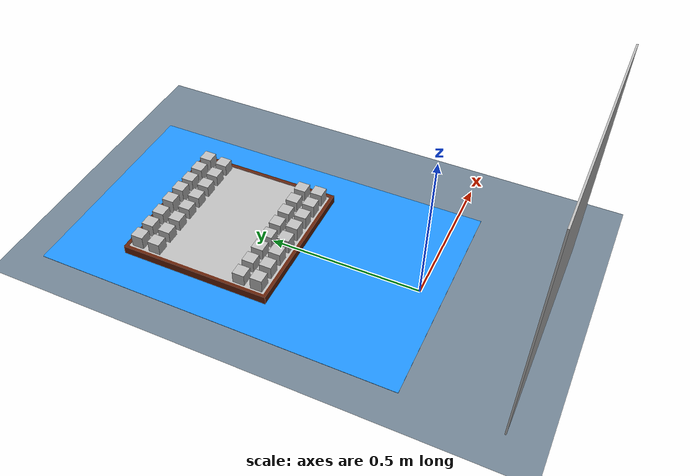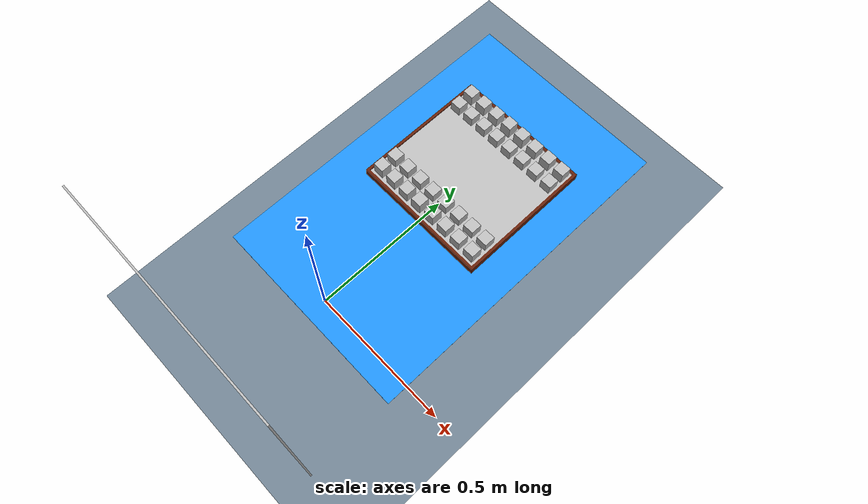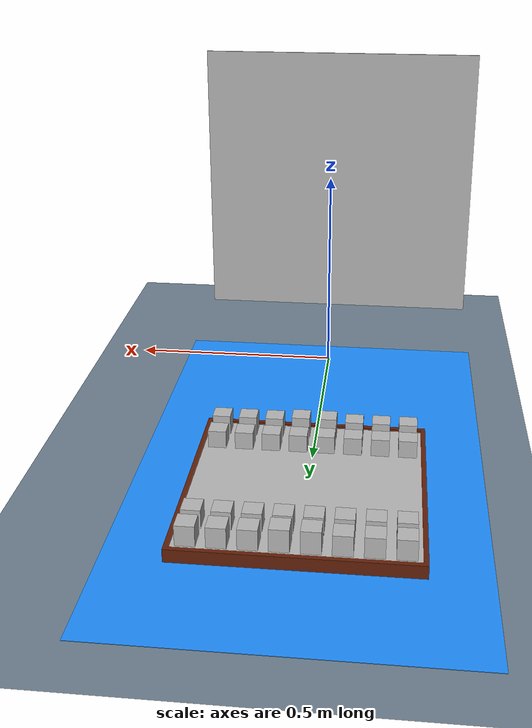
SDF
<?xml version='1.0'?>
<sdf version='1.6'>
  <world name='default'>
    <plugin name="ros_link_attacher_plugin" filename="libgazebo_ros_link_attacher.so"/>

    <light name='sun' type='directional'>
      <cast_shadows>1</cast_shadows>
      <pose frame=''>0 0 10 0 -0 0</pose>
      <diffuse>0.8 0.8 0.8 1</diffuse>
      <specular>0.2 0.2 0.2 1</specular>
      <attenuation>
        <range>1000</range>
        <constant>0.9</constant>
        <linear>0.01</linear>
        <quadratic>0.001</quadratic>
      </attenuation>
      <direction>-0.5 0.1 -0.9</direction>
    </light>

    <model name='ground_plane'>
      <static>1</static>
      <link name='link'>
        <collision name='collision'>
          <geometry>
            <plane>
              <normal>0 0 1</normal>
              <size>100 100</size>
            </plane>
          </geometry>
          <surface>
            <contact>
              <collide_bitmask>65535</collide_bitmask>
              <ode/>
            </contact>
            <friction>
              <ode>
                <mu>100</mu>
                <mu2>50</mu2>
              </ode>
              <torsional>
                <ode/>
              </torsional>
            </friction>
            <bounce/>
          </surface>
          <max_contacts>10</max_contacts>
        </collision>
        <visual name='visual'>
          <cast_shadows>0</cast_shadows>
          <geometry>
            <plane>
              <normal>0 0 1</normal>
              <size>5 5</size>
            </plane>
          </geometry>
          <material>
            <lighting>1</lighting>
            <shader type='vertex'>
              <normal_map>__default__</normal_map>
            </shader>
            <ambient>0.43 0.5 0.56 1</ambient>
            <diffuse>0.43 0.5 0.56 1</diffuse>
            <specular>0.01 0.01 0.01 1</specular>
            <emissive>0 0 0 1</emissive>
          </material>
        </visual>
        <self_collide>0</self_collide>
        <enable_wind>0</enable_wind>
        <kinematic>0</kinematic>
      </link>
    </model>

    <gravity>0 0 -9.8</gravity>
    <magnetic_field>6e-06 2.3e-05 -4.2e-05</magnetic_field>
    <atmosphere type='adiabatic'/>
    <physics name='default_physics' default='0' type='ode'>
      <max_step_size>0.001</max_step_size>
      <real_time_factor>1</real_time_factor>
      <real_time_update_rate>1000</real_time_update_rate>
    </physics>
    <scene>
      <ambient>0.4 0.4 0.4 1</ambient>
      <background>0.7 0.7 0.7 1</background>
      <shadows>1</shadows>
    </scene>
    <audio>
      <device>default</device>
    </audio>
    <wind/>
    <spherical_coordinates>
      <surface_model>EARTH_WGS84</surface_model>
      <latitude_deg>0</latitude_deg>
      <longitude_deg>0</longitude_deg>
      <elevation>0</elevation>
      <heading_deg>0</heading_deg>
    </spherical_coordinates>

    <!-- The table top of the robot -->
    <model name='table'>
      <link name='link'>
        <inertial>
          <mass>1</mass>
          <inertia>
            <ixx>0.166667</ixx>
            <ixy>0</ixy>
            <ixz>0</ixz>
            <iyy>0.166667</iyy>
            <iyz>0</iyz>
            <izz>0.166667</izz>
          </inertia>
          <pose frame=''>0 0 0 0 -0 0</pose>
        </inertial>
        <pose frame=''>0 0 0 0 -0 0</pose>
        <gravity>1</gravity>
        <self_collide>0</self_collide>
        <kinematic>0</kinematic>
        <enable_wind>0</enable_wind>
        <visual name='visual'>
          <pose frame=''>0 0 0 0 -0 0</pose>
          <geometry>
            <box>
              <size>0.75 1.20 0.001</size>
            </box>
          </geometry>
          <material>
            <lighting>1</lighting>
            <shader type='vertex'>
              <normal_map>__default__</normal_map>
            </shader>
            <ambient>0.12 0.56 1 1</ambient>
            <diffuse>0.12 0.56 1 1</diffuse>
            <specular>0.01 0.01 0.01 1</specular>
            <emissive>0 0 0 1</emissive>
          </material>
          <transparency>0</transparency>
          <cast_shadows>1</cast_shadows>
        </visual>
        <collision name='collision'>
          <pose frame=''>0 0 0 0 -0 0</pose>
          <geometry>
            <box>
              <size>0.75 1.20 0.001</size>
            </box>
          </geometry>
        </collision>
      </link>
      <static>1</static>
      <allow_auto_disable>1</allow_auto_disable>
      <pose frame=''>0 0.525 0.0005 0 -0 0</pose>
    </model>

     <!-- Chess Board -->
    <model name="kaspy">
      <pose>0 -0.375 0.375  -1.57 0 0</pose>
      <static>true</static>
      <link name='link'>
        <visual name="visual">
          <geometry>
            <mesh><uri>file:///home/parallels/major_project/src/assignment_1/models/chess_board/meshes/gkasp.dae</uri>
            <scale>0.5 0.5 0.5 </scale>
            </mesh>
          </geometry>
        </visual>
      </link>
    </model>

    <!-- Chess Board -->
    <model name="chess_board">
      <pose>0 0.65 0  0 0 0</pose>
      <static>true</static>
      <link name='link'>
        <visual name="visual">
          <geometry>
            <mesh><uri>file:///home/parallels/major_project/src/assignment_1/models/chess_board/meshes/chess_board.dae</uri>
            </mesh>
          </geometry>
        </visual>
      </link>
    </model>

    <!-- Black Pieces -->
    <model name="rook_black_1">
      <pose>0.21 0.44 0.045  0 0 0</pose>
      <static>1</static>
      <link name='link'>
        <inertial>
          <mass>2</mass>
          <inertia>
            <ixx>0.166667</ixx>
            <ixy>0</ixy>
            <ixz>0</ixz>
            <iyy>0.166667</iyy>
            <iyz>0</iyz>
            <izz>0.166667</izz>
          </inertia>
        </inertial>
        <gravity>1</gravity>
        <visual name="visual">
          <geometry>
            <mesh><uri>file:///home/parallels/major_project/src/assignment_1/models/chess_board/meshes/rook_black.dae</uri>
            <scale>0.5 0.5 0.5 </scale>
            </mesh>
          </geometry>
        </visual>
      </link>
    </model>

    <model name="knight_black_1">
      <pose>0.15 0.44 0.045  0 0 0</pose>
      <static>true</static>
      <link name='link'>
        <visual name="visual">
          <geometry>
            <mesh><uri>file:///home/parallels/major_project/src/assignment_1/models/chess_board/meshes/knight_black.dae</uri>
            <scale>0.5 0.5 0.5 </scale>
            </mesh>
          </geometry>
        </visual>
      </link>
    </model>

    <model name="bishop_black_1">
      <pose>0.09 0.44 0.045  0 0 0</pose>
      <static>true</static>
      <link name='link'>
        <visual name="visual">
          <geometry>
            <mesh><uri>file:///home/parallels/major_project/src/assignment_1/models/chess_board/meshes/bishop_black.dae</uri>
            <scale>0.5 0.5 0.5 </scale>
            </mesh>
          </geometry>
        </visual>
      </link>
    </model>
    <model name="queen_black">
      <pose>0.03 0.44 0.045  0 0 0</pose>
      <static>true</static>
      <link name='link'>
        <visual name="visual">
          <geometry>
            <mesh><uri>file:///home/parallels/major_project/src/assignment_1/models/chess_board/meshes/queen_black.dae</uri>
            <scale>0.5 0.5 0.5 </scale>
            </mesh>
          </geometry>
        </visual>
      </link>
    </model>
    <model name="king_black">
      <pose>-0.03 0.44 0.045  0 0 0</pose>
      <static>true</static>
      <link name='link'>
        <visual name="visual">
          <geometry>
            <mesh><uri>file:///home/parallels/major_project/src/assignment_1/models/chess_board/meshes/king_black.dae</uri>
            <scale>0.5 0.5 0.5 </scale>
            </mesh>
          </geometry>
        </visual>
      </link>
    </model>
    <model name="bishop_black_2">
      <pose>-0.09 0.44 0.045  0 0 0</pose>
      <static>true</static>
      <link name='link'>
        <visual name="visual">
          <geometry>
            <mesh><uri>file:///home/parallels/major_project/src/assignment_1/models/chess_board/meshes/bishop_black.dae</uri>
            <scale>0.5 0.5 0.5 </scale>
            </mesh>
          </geometry>
        </visual>
      </link>
    </model>
    <model name="knight_black_2">
      <pose>-0.15 0.44 0.045  0 0 0</pose>
      <static>true</static>
      <link name='link'>
        <visual name="visual">
          <geometry>
            <mesh><uri>file:///home/parallels/major_project/src/assignment_1/models/chess_board/meshes/knight_black.dae</uri>
            <scale>0.5 0.5 0.5 </scale>
            </mesh>
          </geometry>
        </visual>
      </link>
    </model>
    <model name="rook_black_2">
      <pose>-0.21 0.44 0.045  0 0 0</pose>
      <static>true</static>
      <link name='link'>
        <visual name="visual">
          <geometry>
            <mesh><uri>file:///home/parallels/major_project/src/assignment_1/models/chess_board/meshes/rook_black.dae</uri>
            <scale>0.5 0.5 0.5 </scale>
            </mesh>
          </geometry>
        </visual>
      </link>
    </model>

     <model name="pawn_black_1">
      <pose>0.21 0.5 0.045  0 0 0</pose>
      <static>true</static>
      <link name='link'>
        <visual name="visual">
          <geometry>
            <mesh><uri>file:///home/parallels/major_project/src/assignment_1/models/chess_board/meshes/pawn_black.dae</uri>
            <scale>0.5 0.5 0.5 </scale>
            </mesh>
          </geometry>
        </visual>
      </link>
    </model>
    <model name="pawn_black_2">
      <pose>0.15 0.5 0.045  0 0 0</pose>
      <static>true</static>
      <link name='link'>
        <visual name="visual">
          <geometry>
            <mesh><uri>file:///home/parallels/major_project/src/assignment_1/models/chess_board/meshes/pawn_black.dae</uri>
            <scale>0.5 0.5 0.5 </scale>
            </mesh>
          </geometry>
        </visual>
      </link>
    </model>
    <model name="pawn_black_3">
      <pose>0.09 0.5 0.045  0 0 0</pose>
      <static>true</static>
      <link name='link'>
        <visual name="visual">
          <geometry>
            <mesh><uri>file:///home/parallels/major_project/src/assignment_1/models/chess_board/meshes/pawn_black.dae</uri>
            <scale>0.5 0.5 0.5 </scale>
            </mesh>
          </geometry>
        </visual>
      </link>
    </model>
    <model name="pawn_black_4">
      <pose>0.03 0.5 0.045  0 0 0</pose>
      <static>true</static>
      <link name='link'>
        <visual name="visual">
          <geometry>
            <mesh><uri>file:///home/parallels/major_project/src/assignment_1/models/chess_board/meshes/pawn_black.dae</uri>
            <scale>0.5 0.5 0.5 </scale>
            </mesh>
          </geometry>
        </visual>
      </link>
    </model>
    <model name="pawn_black_5">
      <pose>-0.03 0.5 0.045  0 0 0</pose>
      <static>true</static>
      <link name='link'>
        <visual name="visual">
          <geometry>
            <mesh><uri>file:///home/parallels/major_project/src/assignment_1/models/chess_board/meshes/pawn_black.dae</uri>
            <scale>0.5 0.5 0.5 </scale>
            </mesh>
          </geometry>
        </visual>
      </link>
    </model>
    <model name="pawn_black_6">
      <pose>-0.09 0.5 0.045  0 0 0</pose>
      <static>true</static>
      <link name='link'>
        <visual name="visual">
          <geometry>
            <mesh><uri>file:///home/parallels/major_project/src/assignment_1/models/chess_board/meshes/pawn_black.dae</uri>
            <scale>0.5 0.5 0.5 </scale>
            </mesh>
          </geometry>
        </visual>
      </link>
    </model>
    <model name="pawn_black_7">
      <pose>-0.15 0.5 0.045  0 0 0</pose>
      <static>true</static>
      <link name='link'>
        <visual name="visual">
          <geometry>
            <mesh><uri>file:///home/parallels/major_project/src/assignment_1/models/chess_board/meshes/pawn_black.dae</uri>
            <scale>0.5 0.5 0.5 </scale>
            </mesh>
          </geometry>
        </visual>
      </link>
    </model>
    <model name="pawn_black_8">
      <pose>-0.21 0.5 0.045  0 0 0</pose>
      <static>true</static>
      <link name='link'>
        <visual name="visual">
          <geometry>
            <mesh><uri>file:///home/parallels/major_project/src/assignment_1/models/chess_board/meshes/pawn_black.dae</uri>
            <scale>0.5 0.5 0.5 </scale>
            </mesh>
          </geometry>
        </visual>
      </link>
    </model>

    <!-- White Pieces -->
    <model name="rook_white_1">
      <pose>0.21 0.86 0.045  0 0 0</pose>
      <static>true</static>
      <link name='link'>
        <visual name="visual">
          <geometry>
            <mesh><uri>file:///home/parallels/major_project/src/assignment_1/models/chess_board/meshes/rook_white.dae</uri>
            <scale>0.5 0.5 0.5 </scale>
            </mesh>
          </geometry>
        </visual>
      </link>
    </model>
    <model name="knight_white_1">
      <pose>0.15 0.86 0.045  0 0 0</pose>
      <static>true</static>
      <link name='link'>
        <visual name="visual">
          <geometry>
            <mesh><uri>file:///home/parallels/major_project/src/assignment_1/models/chess_board/meshes/knight_white.dae</uri>
            <scale>0.5 0.5 0.5 </scale>
            </mesh>
          </geometry>
        </visual>
      </link>
    </model>
    <model name="bishop_white_1">
      <pose>0.09 0.86 0.045  0 0 0</pose>
      <static>true</static>
      <link name='link'>
        <visual name="visual">
          <geometry>
            <mesh><uri>file:///home/parallels/major_project/src/assignment_1/models/chess_board/meshes/bishop_white.dae</uri>
            <scale>0.5 0.5 0.5 </scale>
            </mesh>
          </geometry>
        </visual>
      </link>
    </model>
    <model name="queen_white">
      <pose>0.03 0.86 0.045  0 0 0</pose>
      <static>true</static>
      <link name='link'>
        <visual name="visual">
          <geometry>
            <mesh><uri>file:///home/parallels/major_project/src/assignment_1/models/chess_board/meshes/queen_white.dae</uri>
            <scale>0.5 0.5 0.5 </scale>
            </mesh>
          </geometry>
        </visual>
      </link>
    </model>
    <model name="king_white">
      <pose>-0.03 0.86 0.045  0 0 0</pose>
      <static>true</static>
      <link name='link'>
        <visual name="visual">
          <geometry>
            <mesh><uri>file:///home/parallels/major_project/src/assignment_1/models/chess_board/meshes/king_white.dae</uri>
            <scale>0.5 0.5 0.5 </scale>
            </mesh>
          </geometry>
        </visual>
      </link>
    </model>
    <model name="bishop_white_2">
      <pose>-0.09 0.86 0.045  0 0 0</pose>
      <static>true</static>
      <link name='link'>
        <visual name="visual">
          <geometry>
            <mesh><uri>file:///home/parallels/major_project/src/assignment_1/models/chess_board/meshes/bishop_white.dae</uri>
            <scale>0.5 0.5 0.5 </scale>
            </mesh>
          </geometry>
        </visual>
      </link>
    </model>
    <model name="knight_white_2">
      <pose>-0.15 0.86 0.045  0 0 0</pose>
      <static>true</static>
      <link name='link'>
        <visual name="visual">
          <geometry>
            <mesh><uri>file:///home/parallels/major_project/src/assignment_1/models/chess_board/meshes/knight_white.dae</uri>
            <scale>0.5 0.5 0.5 </scale>
            </mesh>
          </geometry>
        </visual>
      </link>
    </model>
    <model name="rook_white_2">
      <pose>-0.21 0.86 0.045  0 0 0</pose>
      <static>true</static>
      <link name='link'>
        <visual name="visual">
          <geometry>
            <mesh><uri>file:///home/parallels/major_project/src/assignment_1/models/chess_board/meshes/rook_white.dae</uri>
            <scale>0.5 0.5 0.5 </scale>
            </mesh>
          </geometry>
        </visual>
      </link>
    </model>

     <model name="pawn_white_1">
      <pose>0.21 0.8 0.045  0 0 0</pose>
      <static>true</static>
      <link name='link'>
        <visual name="visual">
          <geometry>
            <mesh><uri>file:///home/parallels/major_project/src/assignment_1/models/chess_board/meshes/pawn_white.dae</uri>
            <scale>0.5 0.5 0.5 </scale>
            </mesh>
          </geometry>
        </visual>
      </link>
    </model>
    <model name="pawn_white_2">
      <pose>0.15 0.8 0.045  0 0 0</pose>
      <static>true</static>
      <link name='link'>
        <visual name="visual">
          <geometry>
            <mesh><uri>file:///home/parallels/major_project/src/assignment_1/models/chess_board/meshes/pawn_white.dae</uri>
            <scale>0.5 0.5 0.5 </scale>
            </mesh>
          </geometry>
        </visual>
      </link>
    </model>
    <model name="pawn_white_3">
      <pose>0.09 0.8 0.045  0 0 0</pose>
      <static>true</static>
      <link name='link'>
        <visual name="visual">
          <geometry>
            <mesh><uri>file:///home/parallels/major_project/src/assignment_1/models/chess_board/meshes/pawn_white.dae</uri>
            <scale>0.5 0.5 0.5 </scale>
            </mesh>
          </geometry>
        </visual>
      </link>
    </model>
    <model name="pawn_white_4">
      <pose>0.03 0.8 0.045  0 0 0</pose>
      <static>true</static>
      <link name='link'>
        <visual name="visual">
          <geometry>
            <mesh><uri>file:///home/parallels/major_project/src/assignment_1/models/chess_board/meshes/pawn_white.dae</uri>
            <scale>0.5 0.5 0.5 </scale>
            </mesh>
          </geometry>
        </visual>
      </link>
    </model>
    <model name="pawn_white_5">
      <pose>-0.03 0.8 0.045  0 0 0</pose>
      <static>true</static>
      <link name='link'>
        <visual name="visual">
          <geometry>
            <mesh><uri>file:///home/parallels/major_project/src/assignment_1/models/chess_board/meshes/pawn_white.dae</uri>
            <scale>0.5 0.5 0.5 </scale>
            </mesh>
          </geometry>
        </visual>
      </link>
    </model>
    <model name="pawn_white_9">
      <pose>-0.09 0.8 0.045  0 0 0</pose>
      <static>true</static>
      <link name='link'>
        <visual name="visual">
          <geometry>
            <mesh><uri>file:///home/parallels/major_project/src/assignment_1/models/chess_board/meshes/pawn_white.dae</uri>
            <scale>0.5 0.5 0.5 </scale>
            </mesh>
          </geometry>
        </visual>
      </link>
    </model>
    <model name="pawn_white_7">
      <pose>-0.15 0.8 0.045  0 0 0</pose>
      <static>true</static>
      <link name='link'>
        <visual name="visual">
          <geometry>
            <mesh><uri>file:///home/parallels/major_project/src/assignment_1/models/chess_board/meshes/pawn_white.dae</uri>
            <scale>0.5 0.5 0.5 </scale>
            </mesh>
          </geometry>
        </visual>
      </link>
    </model>
    <model name="pawn_white_8">
      <pose>-0.21 0.8 0.045  0 0 0</pose>
      <static>true</static>
      <link name='link'>
        <visual name="visual">
          <geometry>
            <mesh><uri>file:///home/parallels/major_project/src/assignment_1/models/chess_board/meshes/pawn_white.dae</uri>
            <scale>0.5 0.5 0.5 </scale>
            </mesh>
          </geometry>
        </visual>
      </link>
    </model>

    <light type="point" name="point_light">
      <pose>0 0.75 1 0 0 0</pose>
      <diffuse>1 1 1 1</diffuse>
      <specular>.1 .1 .1 1</specular>
      <attenuation>
        <range>20</range>
        <linear>0.2</linear>
        <constant>0.15</constant>
        <quadratic>0.02</quadratic>
      </attenuation>
      <cast_shadows>false</cast_shadows>
    </light>
     <light type="spot" name="spot_light">
      <pose>0 0.2 1.37 -0.5 0 0</pose>
      <diffuse>0.5 0.5 0.5 1</diffuse>
      <specular>.1 .1 .1 1</specular>
      <attenuation>
        <range>20</range>
        <linear>0.2</linear>
        <constant>0.15</constant>
        <quadratic>0.02</quadratic>
      </attenuation>
      <spot>
        <inner_angle>0.6</inner_angle>
        <outer_angle>1</outer_angle>
        <falloff>1</falloff>
      </spot>
      <cast_shadows>false</cast_shadows>
    </light>

  </world>
</sdf>
